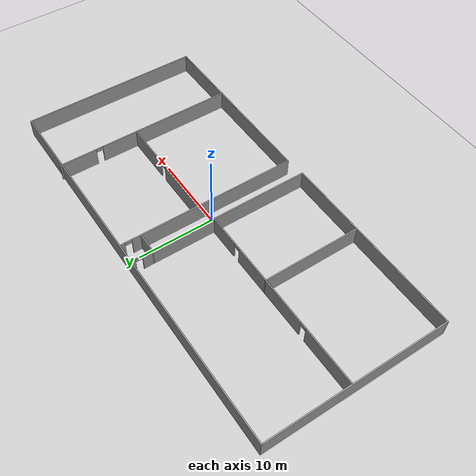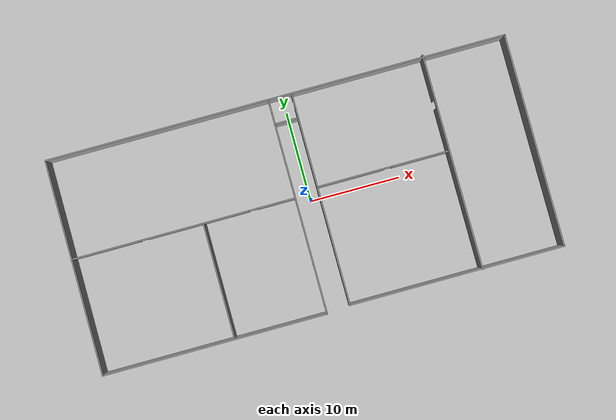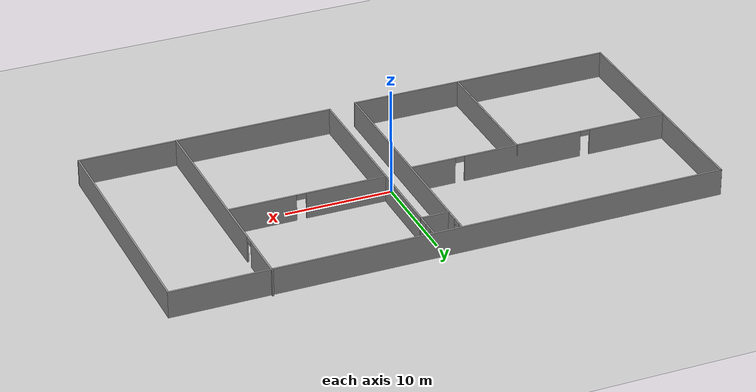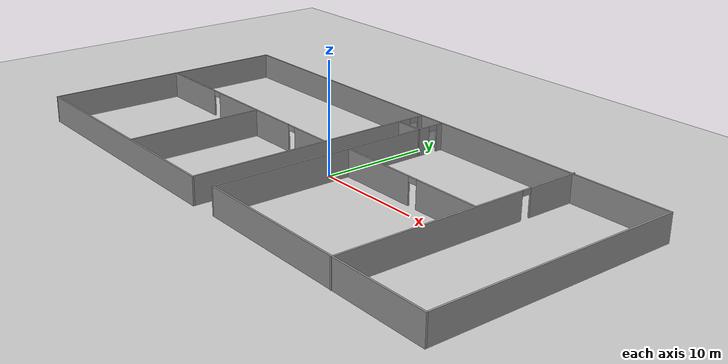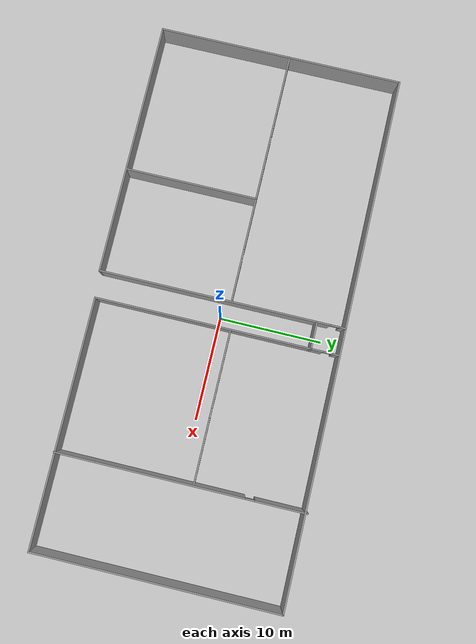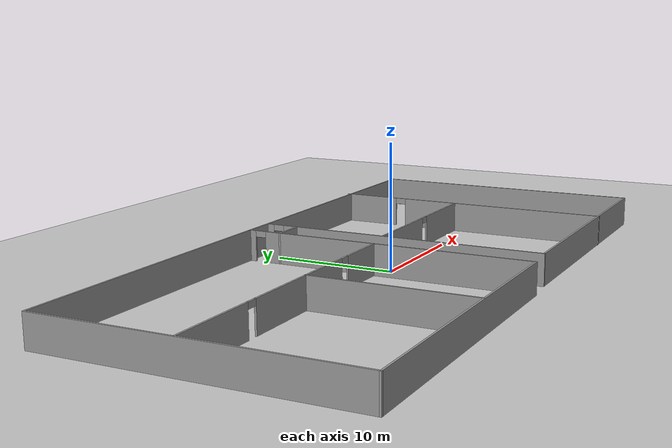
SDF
<sdf version="1.6">
 <world name="default">
  <light name="sun" type="directional">
   <pose>0 0 10 0 -0 0</pose>
   <diffuse>0.8 0.8 0.8 1</diffuse>
   <specular>0.1 0.1 0.1 1</specular>
   <attenuation>
    <range>1000</range>
    <constant>0.9</constant>
    <linear>0.01</linear>
    <quadratic>0.001</quadratic>
   </attenuation>
   <direction>-0.5 0.5 -1</direction>
  </light>
  <model name="ground_plane">
   <static>1</static>
   <link name="link">
    <collision name="collision">
     <geometry><plane><normal>0 0 1</normal><size>100 100</size></plane></geometry>
     <surface><friction><ode><mu>100</mu><mu2>50</mu2></ode></friction></surface>
    </collision>
    <visual name="visual">
     <cast_shadows>0</cast_shadows>
     <geometry><plane><normal>0 0 1</normal><size>100 100</size></plane></geometry>
     <material>
      <script><uri>file://media/materials/scripts/gazebo.material</uri><name>Gazebo/Grey</name></script>
     </material>
    </visual>
   </link>
  </model>
  <gravity>0 0 -9.8</gravity>
  <magnetic_field>6e-06 2.3e-05 -4.2e-05</magnetic_field>
  <atmosphere type="adiabatic"/>
  <physics name="default_physics" default="0" type="ode">
   <max_step_size>0.001</max_step_size>
   <real_time_factor>1</real_time_factor>
   <real_time_update_rate>1000</real_time_update_rate>
  </physics>
  <scene><ambient>0.4 0.4 0.4 1</ambient><background>0.7 0.7 0.7 1</background><shadows>1</shadows></scene>
  <spherical_coordinates>
   <surface_model>EARTH_WGS84</surface_model>
   <latitude_deg>0</latitude_deg>
   <longitude_deg>0</longitude_deg>
   <elevation>0</elevation>
   <heading_deg>0</heading_deg>
  </spherical_coordinates>
  <model name="Building_example">
   <pose>-0.777028 -0.10606 0 0 -0 0</pose>
   <link name="Wall_30">
    <collision name="Wall_30_Collision">
     <geometry><box><size>23.99 0.15 2.5</size></box></geometry>
     <pose>0 0 1.25 0 -0 0</pose>
    </collision>
    <visual name="Wall_30_Visual">
     <pose>0 0 1.25 0 -0 0</pose>
     <geometry><box><size>23.99 0.15 2.5</size></box></geometry>
     <material>
      <script><uri>file://media/materials/scripts/gazebo.material</uri><name>Gazebo/Grey</name></script>
      <ambient>1 1 1 1</ambient>
     </material>
    </visual>
    <pose>-25.6499 -0.103534 0 0 0 -1.5708</pose>
   </link>
   <link name="Wall_31">
    <collision name="Wall_31_Collision">
     <geometry><box><size>25 0.15 2.5</size></box></geometry>
     <pose>0 0 1.25 0 -0 0</pose>
    </collision>
    <visual name="Wall_31_Visual">
     <pose>0 0 1.25 0 -0 0</pose>
     <geometry><box><size>25 0.15 2.5</size></box></geometry>
     <material>
      <script><uri>file://media/materials/scripts/gazebo.material</uri><name>Gazebo/Grey</name></script>
      <ambient>1 1 1 1</ambient>
     </material>
    </visual>
    <pose>-13.2251 -12.0236 0 0 0 -7e-06</pose>
   </link>
   <link name="Wall_32">
    <collision name="Wall_32_Collision">
     <geometry><box><size>21.25 0.15 2.5</size></box></geometry>
     <pose>0 0 1.25 0 -0 0</pose>
    </collision>
    <visual name="Wall_32_Visual">
     <pose>0 0 1.25 0 -0 0</pose>
     <geometry><box><size>21.25 0.15 2.5</size></box></geometry>
     <material>
      <script><uri>file://media/materials/scripts/gazebo.material</uri><name>Gazebo/Grey</name></script>
      <ambient>1 1 1 1</ambient>
     </material>
    </visual>
    <pose>-0.800073 -1.47362 0 0 -0 1.57078</pose>
   </link>
   <link name="Wall_33">
    <collision name="Wall_33_Collision">
     <geometry><box><size>2.75 0.15 2.5</size></box></geometry>
     <pose>0 0 1.25 0 -0 0</pose>
    </collision>
    <visual name="Wall_33_Visual">
     <pose>0 0 1.25 0 -0 0</pose>
     <geometry><box><size>2.75 0.15 2.5</size></box></geometry>
     <material>
      <script><uri>file://media/materials/scripts/gazebo.material</uri><name>Gazebo/Grey</name></script>
      <ambient>1 1 1 1</ambient>
     </material>
    </visual>
    <pose>0.499927 9.07638 0 0 0 -6.4e-05</pose>
   </link>
   <link name="Wall_34">
    <collision name="Wall_34_Collision">
     <geometry><box><size>21 0.15 2.5</size></box></geometry>
     <pose>0 0 1.25 0 -0 0</pose>
    </collision>
    <visual name="Wall_34_Visual">
     <pose>0 0 1.25 0 -0 0</pose>
     <geometry><box><size>21 0.15 2.5</size></box></geometry>
     <material>
      <script><uri>file://media/materials/scripts/gazebo.material</uri><name>Gazebo/Grey</name></script>
      <ambient>1 1 1 1</ambient>
     </material>
    </visual>
    <pose>1.79978 -1.3487 0 0 0 -1.5708</pose>
   </link>
   <link name="Wall_35">
    <collision name="Wall_35_Collision">
     <geometry><box><size>24 0.15 2.5</size></box></geometry>
     <pose>0 0 1.25 0 -0 0</pose>
    </collision>
    <visual name="Wall_35_Visual">
     <pose>0 0 1.25 0 -0 0</pose>
     <geometry><box><size>24 0.15 2.5</size></box></geometry>
     <material>
      <script><uri>file://media/materials/scripts/gazebo.material</uri><name>Gazebo/Grey</name></script>
      <ambient>1 1 1 1</ambient>
     </material>
    </visual>
    <pose>13.7248 -11.7737 0 0 -0 0</pose>
   </link>
   <link name="Wall_36">
    <collision name="Wall_36_Collision">
     <geometry><box><size>23.75 0.15 2.5</size></box></geometry>
     <pose>0 0 1.25 0 -0 0</pose>
    </collision>
    <visual name="Wall_36_Visual">
     <pose>0 0 1.25 0 -0 0</pose>
     <geometry><box><size>23.75 0.15 2.5</size></box></geometry>
     <material>
      <script><uri>file://media/materials/scripts/gazebo.material</uri><name>Gazebo/Grey</name></script>
      <ambient>1 1 1 1</ambient>
     </material>
    </visual>
    <pose>25.6499 0.026383 0 0 -0 1.57078</pose>
   </link>
   <link name="Wall_37">
    <collision name="Wall_37_Collision">
     <geometry><box><size>51.431 0.15 2.5</size></box></geometry>
     <pose>0 0 1.25 0 -0 0</pose>
    </collision>
    <visual name="Wall_37_Visual">
     <pose>0 0 1.25 0 -0 0</pose>
     <geometry><box><size>51.431 0.15 2.5</size></box></geometry>
     <material>
      <script><uri>file://media/materials/scripts/gazebo.material</uri><name>Gazebo/Grey</name></script>
      <ambient>1 1 1 1</ambient>
     </material>
    </visual>
    <pose>0.009573 11.8265 0 0 -0 3.14159</pose>
   </link>
   <link name="Wall_39">
    <pose>-13.2714 0.819466 0 0 -0 0</pose>
    <visual name="Wall_39_Visual_0">
     <pose>-8.67005 0 1.25 0 -0 0</pose>
     <geometry><box><size>7.4629 0.15 2.5</size></box></geometry>
     <material>
      <script><uri>file://media/materials/scripts/gazebo.material</uri><name>Gazebo/Grey</name></script>
      <ambient>1 1 1 1</ambient>
     </material>
    </visual>
    <collision name="Wall_39_Collision_0">
     <geometry><box><size>7.4629 0.15 2.5</size></box></geometry>
     <pose>-8.67005 0 1.25 0 -0 0</pose>
    </collision>
    <visual name="Wall_39_Visual_1">
     <pose>1.63945 0 1.25 0 -0 0</pose>
     <geometry><box><size>11.3561 0.15 2.5</size></box></geometry>
     <material>
      <script><uri>file://media/materials/scripts/gazebo.material</uri><name>Gazebo/Grey</name></script>
      <ambient>1 1 1 1</ambient>
     </material>
    </visual>
    <collision name="Wall_39_Collision_1">
     <geometry><box><size>11.3561 0.15 2.5</size></box></geometry>
     <pose>1.63945 0 1.25 0 -0 0</pose>
    </collision>
    <visual name="Wall_39_Visual_2">
     <pose>10.3095 0 1.25 0 -0 0</pose>
     <geometry><box><size>4.184 0.15 2.5</size></box></geometry>
     <material>
      <script><uri>file://media/materials/scripts/gazebo.material</uri><name>Gazebo/Grey</name></script>
      <ambient>1 1 1 1</ambient>
     </material>
    </visual>
    <collision name="Wall_39_Collision_2">
     <geometry><box><size>4.184 0.15 2.5</size></box></geometry>
     <pose>10.3095 0 1.25 0 -0 0</pose>
    </collision>
    <visual name="Wall_39_Visual_3">
     <pose>-4.4886 0 2.25 0 -0 0</pose>
     <geometry><box><size>0.9 0.15 0.5</size></box></geometry>
     <material>
      <script><uri>file://media/materials/scripts/gazebo.material</uri><name>Gazebo/Grey</name></script>
      <ambient>1 1 1 1</ambient>
     </material>
    </visual>
    <collision name="Wall_39_Collision_3">
     <geometry><box><size>0.9 0.15 0.5</size></box></geometry>
     <pose>-4.4886 0 2.25 0 -0 0</pose>
    </collision>
    <visual name="Wall_39_Visual_4">
     <pose>7.7675 0 2.25 0 -0 0</pose>
     <geometry><box><size>0.9 0.15 0.5</size></box></geometry>
     <material>
      <script><uri>file://media/materials/scripts/gazebo.material</uri><name>Gazebo/Grey</name></script>
      <ambient>1 1 1 1</ambient>
     </material>
    </visual>
    <collision name="Wall_39_Collision_4">
     <geometry><box><size>0.9 0.15 0.5</size></box></geometry>
     <pose>7.7675 0 2.25 0 -0 0</pose>
    </collision>
   </link>
   <link name="Wall_41">
    <collision name="Wall_41_Collision">
     <geometry><box><size>12.947 0.15 2.5</size></box></geometry>
     <pose>0 0 1.25 0 -0 0</pose>
    </collision>
    <visual name="Wall_41_Visual">
     <pose>0 0 1.25 0 -0 0</pose>
     <geometry><box><size>12.947 0.15 2.5</size></box></geometry>
     <material>
      <script><uri>file://media/materials/scripts/gazebo.material</uri><name>Gazebo/Grey</name></script>
      <ambient>1 1 1 1</ambient>
     </material>
    </visual>
    <pose>-11.0269 -5.57903 0 0 0 -1.5708</pose>
   </link>
   <link name="Wall_47">
    <pose>1.79978 10.3763 0 0 -0 1.5708</pose>
    <visual name="Wall_47_Visual_0">
     <pose>-0.746317 0 1.25 0 -0 0</pose>
     <geometry><box><size>1.25737 0.15 2.5</size></box></geometry>
     <material>
      <script><uri>file://media/materials/scripts/gazebo.material</uri><name>Gazebo/Grey</name></script>
      <ambient>1 1 1 1</ambient>
     </material>
    </visual>
    <collision name="Wall_47_Collision_0">
     <geometry><box><size>1.25737 0.15 2.5</size></box></geometry>
     <pose>-0.746317 0 1.25 0 -0 0</pose>
    </collision>
    <visual name="Wall_47_Visual_1">
     <pose>1.07868 0 1.25 0 -0 0</pose>
     <geometry><box><size>0.592634 0.15 2.5</size></box></geometry>
     <material>
      <script><uri>file://media/materials/scripts/gazebo.material</uri><name>Gazebo/Grey</name></script>
      <ambient>1 1 1 1</ambient>
     </material>
    </visual>
    <collision name="Wall_47_Collision_1">
     <geometry><box><size>0.592634 0.15 2.5</size></box></geometry>
     <pose>1.07868 0 1.25 0 -0 0</pose>
    </collision>
    <visual name="Wall_47_Visual_2">
     <pose>0.332366 0 2.25 0 -0 0</pose>
     <geometry><box><size>0.9 0.15 0.5</size></box></geometry>
     <material>
      <script><uri>file://media/materials/scripts/gazebo.material</uri><name>Gazebo/Grey</name></script>
      <ambient>1 1 1 1</ambient>
     </material>
    </visual>
    <collision name="Wall_47_Collision_2">
     <geometry><box><size>0.9 0.15 0.5</size></box></geometry>
     <pose>0.332366 0 2.25 0 -0 0</pose>
    </collision>
   </link>
   <link name="Wall_49">
    <pose>-0.799927 10.4465 0 0 -0 1.5708</pose>
    <visual name="Wall_49_Visual_0">
     <pose>-0.763798 0 1.25 0 -0 0</pose>
     <geometry><box><size>1.3624 0.15 2.5</size></box></geometry>
     <material>
      <script><uri>file://media/materials/scripts/gazebo.material</uri><name>Gazebo/Grey</name></script>
      <ambient>1 1 1 1</ambient>
     </material>
    </visual>
    <collision name="Wall_49_Collision_0">
     <geometry><box><size>1.3624 0.15 2.5</size></box></geometry>
     <pose>-0.763798 0 1.25 0 -0 0</pose>
    </collision>
    <visual name="Wall_49_Visual_1">
     <pose>1.1312 0 1.25 0 -0 0</pose>
     <geometry><box><size>0.627597 0.15 2.5</size></box></geometry>
     <material>
      <script><uri>file://media/materials/scripts/gazebo.material</uri><name>Gazebo/Grey</name></script>
      <ambient>1 1 1 1</ambient>
     </material>
    </visual>
    <collision name="Wall_49_Collision_1">
     <geometry><box><size>0.627597 0.15 2.5</size></box></geometry>
     <pose>1.1312 0 1.25 0 -0 0</pose>
    </collision>
    <visual name="Wall_49_Visual_2">
     <pose>0.367403 0 2.25 0 -0 0</pose>
     <geometry><box><size>0.9 0.15 0.5</size></box></geometry>
     <material>
      <script><uri>file://media/materials/scripts/gazebo.material</uri><name>Gazebo/Grey</name></script>
      <ambient>1 1 1 1</ambient>
     </material>
    </visual>
    <collision name="Wall_49_Collision_2">
     <geometry><box><size>0.9 0.15 0.5</size></box></geometry>
     <pose>0.367403 0 2.25 0 -0 0</pose>
    </collision>
   </link>
   <link name="Wall_51">
    <pose>9.21286 1.34563 0 0 -0 0</pose>
    <visual name="Wall_51_Visual_0">
     <pose>-3.6437 0 1.25 0 -0 0</pose>
     <geometry><box><size>7.46259 0.15 2.5</size></box></geometry>
     <material>
      <script><uri>file://media/materials/scripts/gazebo.material</uri><name>Gazebo/Grey</name></script>
      <ambient>1 1 1 1</ambient>
     </material>
    </visual>
    <collision name="Wall_51_Collision_0">
     <geometry><box><size>7.46259 0.15 2.5</size></box></geometry>
     <pose>-3.6437 0 1.25 0 -0 0</pose>
    </collision>
    <visual name="Wall_51_Visual_1">
     <pose>4.1813 0 1.25 0 -0 0</pose>
     <geometry><box><size>6.38741 0.15 2.5</size></box></geometry>
     <material>
      <script><uri>file://media/materials/scripts/gazebo.material</uri><name>Gazebo/Grey</name></script>
      <ambient>1 1 1 1</ambient>
     </material>
    </visual>
    <collision name="Wall_51_Collision_1">
     <geometry><box><size>6.38741 0.15 2.5</size></box></geometry>
     <pose>4.1813 0 1.25 0 -0 0</pose>
    </collision>
    <visual name="Wall_51_Visual_2">
     <pose>0.537594 0 2.25 0 -0 0</pose>
     <geometry><box><size>0.9 0.15 0.5</size></box></geometry>
     <material>
      <script><uri>file://media/materials/scripts/gazebo.material</uri><name>Gazebo/Grey</name></script>
      <ambient>1 1 1 1</ambient>
     </material>
    </visual>
    <collision name="Wall_51_Collision_2">
     <geometry><box><size>0.9 0.15 0.5</size></box></geometry>
     <pose>0.537594 0 2.25 0 -0 0</pose>
    </collision>
   </link>
   <link name="Wall_53">
    <pose>16.536 0.098699 0 0 0 -1.5708</pose>
    <visual name="Wall_53_Visual_0">
     <pose>-9.50483 0 1.25 0 -0 0</pose>
     <geometry><box><size>4.99033 0.15 2.5</size></box></geometry>
     <material>
      <script><uri>file://media/materials/scripts/gazebo.material</uri><name>Gazebo/Grey</name></script>
      <ambient>1 1 1 1</ambient>
     </material>
    </visual>
    <collision name="Wall_53_Collision_0">
     <geometry><box><size>4.99033 0.15 2.5</size></box></geometry>
     <pose>-9.50483 0 1.25 0 -0 0</pose>
    </collision>
    <visual name="Wall_53_Visual_1">
     <pose>2.94517 0 1.25 0 -0 0</pose>
     <geometry><box><size>18.1097 0.15 2.5</size></box></geometry>
     <material>
      <script><uri>file://media/materials/scripts/gazebo.material</uri><name>Gazebo/Grey</name></script>
      <ambient>1 1 1 1</ambient>
     </material>
    </visual>
    <collision name="Wall_53_Collision_1">
     <geometry><box><size>18.1097 0.15 2.5</size></box></geometry>
     <pose>2.94517 0 1.25 0 -0 0</pose>
    </collision>
    <visual name="Wall_53_Visual_2">
     <pose>-6.55967 0 2.25 0 -0 0</pose>
     <geometry><box><size>0.9 0.15 0.5</size></box></geometry>
     <material>
      <script><uri>file://media/materials/scripts/gazebo.material</uri><name>Gazebo/Grey</name></script>
      <ambient>1 1 1 1</ambient>
     </material>
    </visual>
    <collision name="Wall_53_Collision_2">
     <geometry><box><size>0.9 0.15 0.5</size></box></geometry>
     <pose>-6.55967 0 2.25 0 -0 0</pose>
    </collision>
   </link>
   <static>1</static>
  </model>
 </world>
</sdf>
